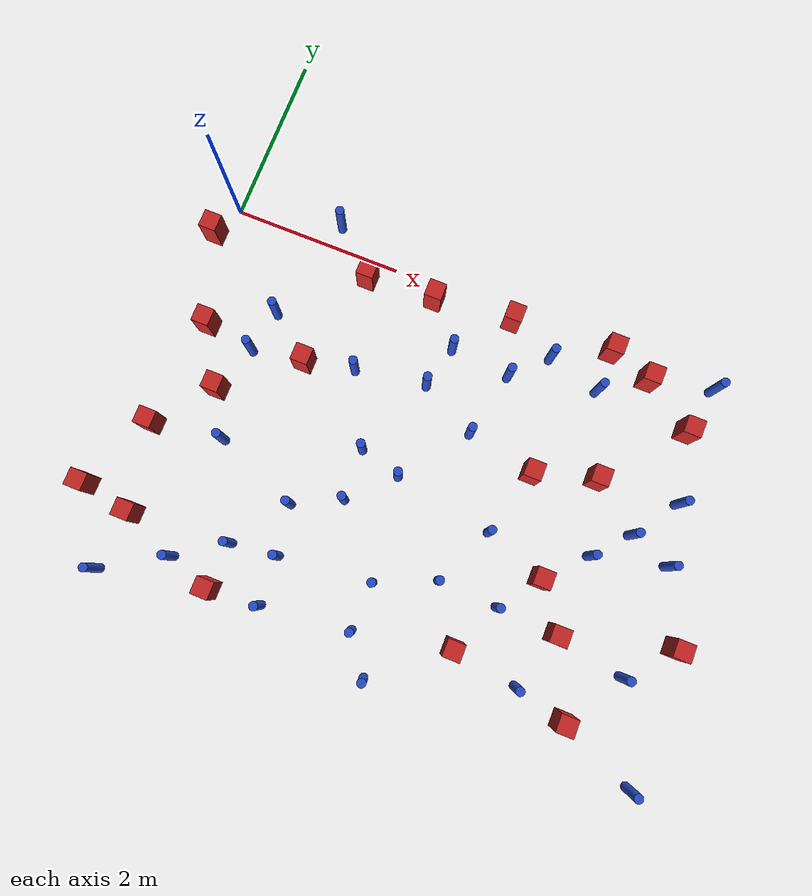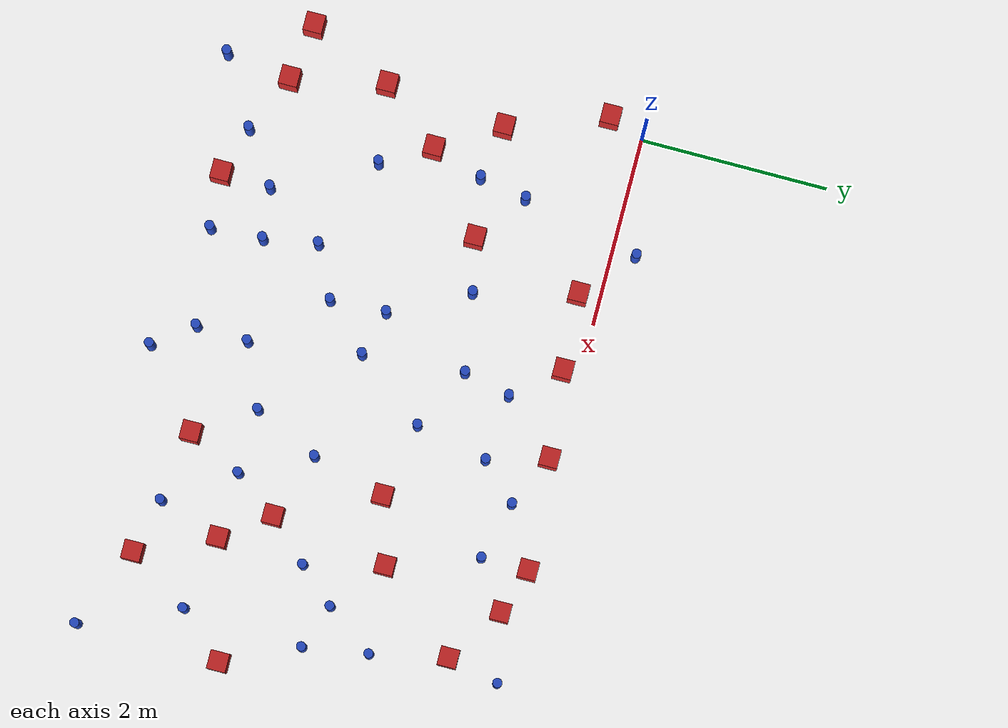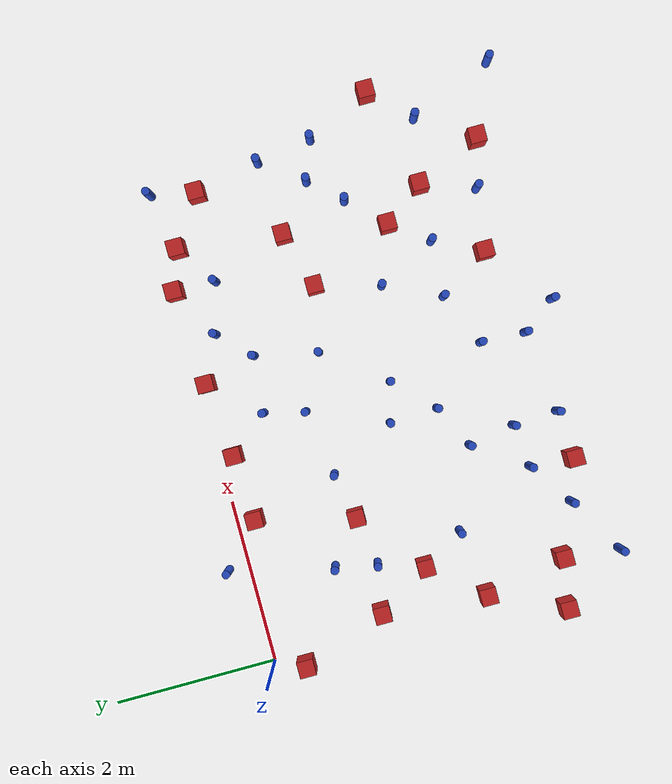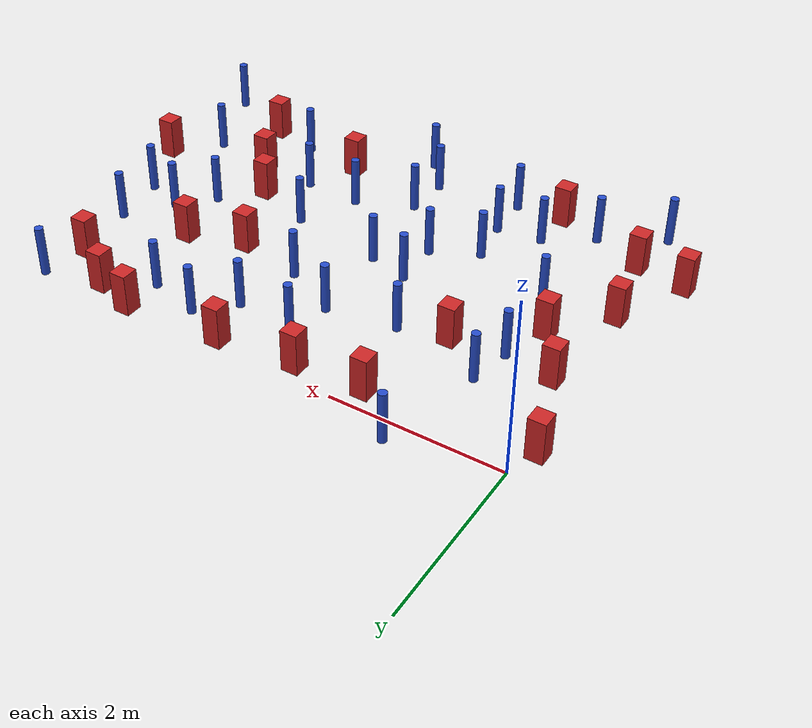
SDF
<sdf version="1.6">
 <model name="dense_16">
  <model name="square_post_obstacle0">
   <static>true</static>
   <pose>-0.131067311828 -0.370867365495 1.91545236811e-07 -7.35059704564e-06 1.12565212e-07 2.39332434364e-05</pose>
   <link name="link">
    <pose>0 0 0.25 0 -0 0</pose>
    <inertial>
     <mass>100</mass>
     <inertia>
      <ixx>0.166667</ixx>
      <ixy>0</ixy>
      <ixz>0</ixz>
      <iyy>0.166667</iyy>
      <iyz>0</iyz>
      <izz>0.166667</izz>
     </inertia>
    </inertial>
    <collision name="collision"><geometry><box><size>.2 .2 .5</size></box></geometry></collision>
    <visual name="visual">
     <geometry><box><size>.2 .2 .5</size></box></geometry>
     <material>
      <script><name>Gazebo/Red</name><uri>file://media/materials/scripts/gazebo.material</uri></script>
     </material>
    </visual>
   </link>
  </model>
  <model name="pole_obstacle0">
   <static>true</static>
   <pose>0.922099915082 -1.01157415732 7.38925637345e-09 -8.47170692799e-08 1.24976765037e-08 -1.74513093019e-07</pose>
   <link name="link">
    <pose>0 0 0.3 0 -0 0</pose>
    <inertial>
     <mass>1</mass>
     <inertia><ixx>0.145833</ixx><ixy>0</ixy><ixz>0</ixz><iyy>0.145833</iyy><iyz>0</iyz><izz>0.125</izz></inertia>
    </inertial>
    <collision name="collision">
     <geometry><cylinder><radius>0.05</radius><length>.6</length></cylinder></geometry>
    </collision>
    <visual name="visual">
     <geometry><cylinder><radius>0.05</radius><length>.6</length></cylinder></geometry>
     <material>
      <script><name>Gazebo/Blue</name><uri>file://media/materials/scripts/gazebo.material</uri></script>
     </material>
    </visual>
   </link>
  </model>
  <model name="pole_obstacle3">
   <static>true</static>
   <pose>4.90822632352 -3.87171259141 7.38925637345e-09 -8.47170692798e-08 1.24976764937e-08 -1.74513093023e-07</pose>
   <link name="link">
    <pose>0 0 0.3 0 -0 0</pose>
    <inertial>
     <mass>1</mass>
     <inertia><ixx>0.145833</ixx><ixy>0</ixy><ixz>0</ixz><iyy>0.145833</iyy><iyz>0</iyz><izz>0.125</izz></inertia>
    </inertial>
    <collision name="collision">
     <geometry><cylinder><radius>0.05</radius><length>.6</length></cylinder></geometry>
    </collision>
    <visual name="visual">
     <geometry><cylinder><radius>0.05</radius><length>.6</length></cylinder></geometry>
     <material>
      <script><name>Gazebo/Blue</name><uri>file://media/materials/scripts/gazebo.material</uri></script>
     </material>
    </visual>
   </link>
  </model>
  <model name="square_post_obstacle11">
   <static>true</static>
   <pose>4.64751890124 -0.0145843861051 1.91545236811e-07 -7.35059704564e-06 1.12565212e-07 2.39332434364e-05</pose>
   <link name="link">
    <pose>0 0 0.25 0 -0 0</pose>
    <inertial>
     <mass>100</mass>
     <inertia>
      <ixx>0.166667</ixx>
      <ixy>0</ixy>
      <ixz>0</ixz>
      <iyy>0.166667</iyy>
      <iyz>0</iyz>
      <izz>0.166667</izz>
     </inertia>
    </inertial>
    <collision name="collision"><geometry><box><size>.2 .2 .5</size></box></geometry></collision>
    <visual name="visual">
     <geometry><box><size>.2 .2 .5</size></box></geometry>
     <material>
      <script><name>Gazebo/Red</name><uri>file://media/materials/scripts/gazebo.material</uri></script>
     </material>
    </visual>
   </link>
  </model>
  <model name="pole_obstacle8">
   <static>true</static>
   <pose>5.52795941858 -1.89979225202 7.38925637345e-09 -8.471706928e-08 1.24976765134e-08 -1.74513093015e-07</pose>
   <link name="link">
    <pose>0 0 0.3 0 -0 0</pose>
    <inertial>
     <mass>1</mass>
     <inertia><ixx>0.145833</ixx><ixy>0</ixy><ixz>0</ixz><iyy>0.145833</iyy><iyz>0</iyz><izz>0.125</izz></inertia>
    </inertial>
    <collision name="collision">
     <geometry><cylinder><radius>0.05</radius><length>.6</length></cylinder></geometry>
    </collision>
    <visual name="visual">
     <geometry><cylinder><radius>0.05</radius><length>.6</length></cylinder></geometry>
     <material>
      <script><name>Gazebo/Blue</name><uri>file://media/materials/scripts/gazebo.material</uri></script>
     </material>
    </visual>
   </link>
  </model>
  <model name="square_post_obstacle24">
   <static>true</static>
   <pose>2.54639958451 -0.183967553714 1.91545236811e-07 -7.35059704564e-06 1.12565212e-07 2.39332434364e-05</pose>
   <link name="link">
    <pose>0 0 0.25 0 -0 0</pose>
    <inertial>
     <mass>100</mass>
     <inertia>
      <ixx>0.166667</ixx>
      <ixy>0</ixy>
      <ixz>0</ixz>
      <iyy>0.166667</iyy>
      <iyz>0</iyz>
      <izz>0.166667</izz>
     </inertia>
    </inertial>
    <collision name="collision"><geometry><box><size>.2 .2 .5</size></box></geometry></collision>
    <visual name="visual">
     <geometry><box><size>.2 .2 .5</size></box></geometry>
     <material>
      <script><name>Gazebo/Red</name><uri>file://media/materials/scripts/gazebo.material</uri></script>
     </material>
    </visual>
   </link>
  </model>
  <model name="square_post_obstacle27">
   <static>true</static>
   <pose>0.645448570369 -2.06766845561 1.91545236811e-07 -7.35059704564e-06 1.12565212e-07 2.39332434364e-05</pose>
   <link name="link">
    <pose>0 0 0.25 0 -0 0</pose>
    <inertial>
     <mass>100</mass>
     <inertia>
      <ixx>0.166667</ixx>
      <ixy>0</ixy>
      <ixz>0</ixz>
      <iyy>0.166667</iyy>
      <iyz>0</iyz>
      <izz>0.166667</izz>
     </inertia>
    </inertial>
    <collision name="collision"><geometry><box><size>.2 .2 .5</size></box></geometry></collision>
    <visual name="visual">
     <geometry><box><size>.2 .2 .5</size></box></geometry>
     <material>
      <script><name>Gazebo/Red</name><uri>file://media/materials/scripts/gazebo.material</uri></script>
     </material>
    </visual>
   </link>
  </model>
  <model name="pole_obstacle39">
   <static>true</static>
   <pose>0.941948804567 -3.97570511167 7.38925637345e-09 -8.471706928e-08 1.2497676523e-08 -1.7451309301e-07</pose>
   <link name="link">
    <pose>0 0 0.3 0 -0 0</pose>
    <inertial>
     <mass>1</mass>
     <inertia><ixx>0.145833</ixx><ixy>0</ixy><ixz>0</ixz><iyy>0.145833</iyy><iyz>0</iyz><izz>0.125</izz></inertia>
    </inertial>
    <collision name="collision">
     <geometry><cylinder><radius>0.05</radius><length>.6</length></cylinder></geometry>
    </collision>
    <visual name="visual">
     <geometry><cylinder><radius>0.05</radius><length>.6</length></cylinder></geometry>
     <material>
      <script><name>Gazebo/Blue</name><uri>file://media/materials/scripts/gazebo.material</uri></script>
     </material>
    </visual>
   </link>
  </model>
  <model name="pole_obstacle42">
   <static>true</static>
   <pose>2.45680966726 -2.70772601505 7.38925637345e-09 -8.47170692798e-08 1.24976764939e-08 -1.74513093025e-07</pose>
   <link name="link">
    <pose>0 0 0.3 0 -0 0</pose>
    <inertial>
     <mass>1</mass>
     <inertia><ixx>0.145833</ixx><ixy>0</ixy><ixz>0</ixz><iyy>0.145833</iyy><iyz>0</iyz><izz>0.125</izz></inertia>
    </inertial>
    <collision name="collision">
     <geometry><cylinder><radius>0.05</radius><length>.6</length></cylinder></geometry>
    </collision>
    <visual name="visual">
     <geometry><cylinder><radius>0.05</radius><length>.6</length></cylinder></geometry>
     <material>
      <script><name>Gazebo/Blue</name><uri>file://media/materials/scripts/gazebo.material</uri></script>
     </material>
    </visual>
   </link>
  </model>
  <model name="square_post_obstacle40">
   <static>true</static>
   <pose>4.27733554913 -1.66524233601 1.91545236811e-07 -7.35059704564e-06 1.12565212e-07 2.39332434364e-05</pose>
   <link name="link">
    <pose>0 0 0.25 0 -0 0</pose>
    <inertial>
     <mass>100</mass>
     <inertia>
      <ixx>0.166667</ixx>
      <ixy>0</ixy>
      <ixz>0</ixz>
      <iyy>0.166667</iyy>
      <iyz>0</iyz>
      <izz>0.166667</izz>
     </inertia>
    </inertial>
    <collision name="collision"><geometry><box><size>.2 .2 .5</size></box></geometry></collision>
    <visual name="visual">
     <geometry><box><size>.2 .2 .5</size></box></geometry>
     <material>
      <script><name>Gazebo/Red</name><uri>file://media/materials/scripts/gazebo.material</uri></script>
     </material>
    </visual>
   </link>
  </model>
  <model name="square_post_obstacle45">
   <static>true</static>
   <pose>4.14560555239 -3.75059449753 1.91545236811e-07 -7.35059704564e-06 1.12565212e-07 2.39332434364e-05</pose>
   <link name="link">
    <pose>0 0 0.25 0 -0 0</pose>
    <inertial>
     <mass>100</mass>
     <inertia>
      <ixx>0.166667</ixx>
      <ixy>0</ixy>
      <ixz>0</ixz>
      <iyy>0.166667</iyy>
      <iyz>0</iyz>
      <izz>0.166667</izz>
     </inertia>
    </inertial>
    <collision name="collision"><geometry><box><size>.2 .2 .5</size></box></geometry></collision>
    <visual name="visual">
     <geometry><box><size>.2 .2 .5</size></box></geometry>
     <material>
      <script><name>Gazebo/Red</name><uri>file://media/materials/scripts/gazebo.material</uri></script>
     </material>
    </visual>
   </link>
  </model>
  <model name="pole_obstacle68">
   <static>true</static>
   <pose>5.928359118 -3.35960280752 7.38925637345e-09 -8.47170692798e-08 1.24976764937e-08 -1.74513093023e-07</pose>
   <link name="link">
    <pose>0 0 0.3 0 -0 0</pose>
    <inertial>
     <mass>1</mass>
     <inertia><ixx>0.145833</ixx><ixy>0</ixy><ixz>0</ixz><iyy>0.145833</iyy><iyz>0</iyz><izz>0.125</izz></inertia>
    </inertial>
    <collision name="collision">
     <geometry><cylinder><radius>0.05</radius><length>.6</length></cylinder></geometry>
    </collision>
    <visual name="visual">
     <geometry><cylinder><radius>0.05</radius><length>.6</length></cylinder></geometry>
     <material>
      <script><name>Gazebo/Blue</name><uri>file://media/materials/scripts/gazebo.material</uri></script>
     </material>
    </visual>
   </link>
  </model>
  <model name="pole_obstacle74">
   <static>true</static>
   <pose>5.18159181039 -2.28237882683 7.38925637345e-09 -8.47170692798e-08 1.24976764937e-08 -1.74513093023e-07</pose>
   <link name="link">
    <pose>0 0 0.3 0 -0 0</pose>
    <inertial>
     <mass>1</mass>
     <inertia><ixx>0.145833</ixx><ixy>0</ixy><ixz>0</ixz><iyy>0.145833</iyy><iyz>0</iyz><izz>0.125</izz></inertia>
    </inertial>
    <collision name="collision">
     <geometry><cylinder><radius>0.05</radius><length>.6</length></cylinder></geometry>
    </collision>
    <visual name="visual">
     <geometry><cylinder><radius>0.05</radius><length>.6</length></cylinder></geometry>
     <material>
      <script><name>Gazebo/Blue</name><uri>file://media/materials/scripts/gazebo.material</uri></script>
     </material>
    </visual>
   </link>
  </model>
  <model name="pole_obstacle75">
   <static>true</static>
   <pose>0.233361145274 -4.39597385954 7.38925637345e-09 -8.471706928e-08 1.24976765124e-08 -1.74513093014e-07</pose>
   <link name="link">
    <pose>0 0 0.3 0 -0 0</pose>
    <inertial>
     <mass>1</mass>
     <inertia><ixx>0.145833</ixx><ixy>0</ixy><ixz>0</ixz><iyy>0.145833</iyy><iyz>0</iyz><izz>0.125</izz></inertia>
    </inertial>
    <collision name="collision">
     <geometry><cylinder><radius>0.05</radius><length>.6</length></cylinder></geometry>
    </collision>
    <visual name="visual">
     <geometry><cylinder><radius>0.05</radius><length>.6</length></cylinder></geometry>
     <material>
      <script><name>Gazebo/Blue</name><uri>file://media/materials/scripts/gazebo.material</uri></script>
     </material>
    </visual>
   </link>
  </model>
  <model name="pole_obstacle91">
   <static>true</static>
   <pose>3.08897060125 -3.4264201279 7.38925637345e-09 -8.47170692798e-08 1.24976764939e-08 -1.74513093025e-07</pose>
   <link name="link">
    <pose>0 0 0.3 0 -0 0</pose>
    <inertial>
     <mass>1</mass>
     <inertia><ixx>0.145833</ixx><ixy>0</ixy><ixz>0</ixz><iyy>0.145833</iyy><iyz>0</iyz><izz>0.125</izz></inertia>
    </inertial>
    <collision name="collision">
     <geometry><cylinder><radius>0.05</radius><length>.6</length></cylinder></geometry>
    </collision>
    <visual name="visual">
     <geometry><cylinder><radius>0.05</radius><length>.6</length></cylinder></geometry>
     <material>
      <script><name>Gazebo/Blue</name><uri>file://media/materials/scripts/gazebo.material</uri></script>
     </material>
    </visual>
   </link>
  </model>
  <model name="pole_obstacle93">
   <static>true</static>
   <pose>0.945299777563 -2.58377284101 7.38925637345e-09 -8.47170692799e-08 1.2497676509e-08 -1.74513093016e-07</pose>
   <link name="link">
    <pose>0 0 0.3 0 -0 0</pose>
    <inertial>
     <mass>1</mass>
     <inertia><ixx>0.145833</ixx><ixy>0</ixy><ixz>0</ixz><iyy>0.145833</iyy><iyz>0</iyz><izz>0.125</izz></inertia>
    </inertial>
    <collision name="collision">
     <geometry><cylinder><radius>0.05</radius><length>.6</length></cylinder></geometry>
    </collision>
    <visual name="visual">
     <geometry><cylinder><radius>0.05</radius><length>.6</length></cylinder></geometry>
     <material>
      <script><name>Gazebo/Blue</name><uri>file://media/materials/scripts/gazebo.material</uri></script>
     </material>
    </visual>
   </link>
  </model>
  <model name="pole_obstacle94">
   <static>true</static>
   <pose>4.02632593985 -0.349782025373 7.38925637345e-09 -8.47170692792e-08 1.24976764416e-08 -1.74513093042e-07</pose>
   <link name="link">
    <pose>0 0 0.3 0 -0 0</pose>
    <inertial>
     <mass>1</mass>
     <inertia><ixx>0.145833</ixx><ixy>0</ixy><ixz>0</ixz><iyy>0.145833</iyy><iyz>0</iyz><izz>0.125</izz></inertia>
    </inertial>
    <collision name="collision">
     <geometry><cylinder><radius>0.05</radius><length>.6</length></cylinder></geometry>
    </collision>
    <visual name="visual">
     <geometry><cylinder><radius>0.05</radius><length>.6</length></cylinder></geometry>
     <material>
      <script><name>Gazebo/Blue</name><uri>file://media/materials/scripts/gazebo.material</uri></script>
     </material>
    </visual>
   </link>
  </model>
  <model name="square_post_obstacle87">
   <static>true</static>
   <pose>6.36985261778 -2.86816911384 1.91545236811e-07 -7.35059704564e-06 1.12565212e-07 2.39332434364e-05</pose>
   <link name="link">
    <pose>0 0 0.25 0 -0 0</pose>
    <inertial>
     <mass>100</mass>
     <inertia>
      <ixx>0.166667</ixx>
      <ixy>0</ixy>
      <ixz>0</ixz>
      <iyy>0.166667</iyy>
      <iyz>0</iyz>
      <izz>0.166667</izz>
     </inertia>
    </inertial>
    <collision name="collision"><geometry><box><size>.2 .2 .5</size></box></geometry></collision>
    <visual name="visual">
     <geometry><box><size>.2 .2 .5</size></box></geometry>
     <material>
      <script><name>Gazebo/Red</name><uri>file://media/materials/scripts/gazebo.material</uri></script>
     </material>
    </visual>
   </link>
  </model>
  <model name="pole_obstacle104">
   <static>true</static>
   <pose>1.9210064453 -2.97251089332 7.38925637345e-09 -8.47170692799e-08 1.24976765053e-08 -1.74513093017e-07</pose>
   <link name="link">
    <pose>0 0 0.3 0 -0 0</pose>
    <inertial>
     <mass>1</mass>
     <inertia><ixx>0.145833</ixx><ixy>0</ixy><ixz>0</ixz><iyy>0.145833</iyy><iyz>0</iyz><izz>0.125</izz></inertia>
    </inertial>
    <collision name="collision">
     <geometry><cylinder><radius>0.05</radius><length>.6</length></cylinder></geometry>
    </collision>
    <visual name="visual">
     <geometry><cylinder><radius>0.05</radius><length>.6</length></cylinder></geometry>
     <material>
      <script><name>Gazebo/Blue</name><uri>file://media/materials/scripts/gazebo.material</uri></script>
     </material>
    </visual>
   </link>
  </model>
  <model name="pole_obstacle108">
   <static>true</static>
   <pose>6.00695831589 -2.0761797639 7.38925637345e-09 -8.47170692798e-08 1.24976764937e-08 -1.74513093023e-07</pose>
   <link name="link">
    <pose>0 0 0.3 0 -0 0</pose>
    <inertial>
     <mass>1</mass>
     <inertia><ixx>0.145833</ixx><ixy>0</ixy><ixz>0</ixz><iyy>0.145833</iyy><iyz>0</iyz><izz>0.125</izz></inertia>
    </inertial>
    <collision name="collision">
     <geometry><cylinder><radius>0.05</radius><length>.6</length></cylinder></geometry>
    </collision>
    <visual name="visual">
     <geometry><cylinder><radius>0.05</radius><length>.6</length></cylinder></geometry>
     <material>
      <script><name>Gazebo/Blue</name><uri>file://media/materials/scripts/gazebo.material</uri></script>
     </material>
    </visual>
   </link>
  </model>
  <model name="square_post_obstacle99">
   <static>true</static>
   <pose>0.123946242135 -2.70105854656 1.91545236811e-07 -7.35059704564e-06 1.12565212e-07 2.39332434364e-05</pose>
   <link name="link">
    <pose>0 0 0.25 0 -0 0</pose>
    <inertial>
     <mass>100</mass>
     <inertia>
      <ixx>0.166667</ixx>
      <ixy>0</ixy>
      <ixz>0</ixz>
      <iyy>0.166667</iyy>
      <iyz>0</iyz>
      <izz>0.166667</izz>
     </inertia>
    </inertial>
    <collision name="collision"><geometry><box><size>.2 .2 .5</size></box></geometry></collision>
    <visual name="visual">
     <geometry><box><size>.2 .2 .5</size></box></geometry>
     <material>
      <script><name>Gazebo/Red</name><uri>file://media/materials/scripts/gazebo.material</uri></script>
     </material>
    </visual>
   </link>
  </model>
  <model name="square_post_obstacle101">
   <static>true</static>
   <pose>5.49275221703 -4.01679119291 1.91545236811e-07 -7.35059704564e-06 1.12565212e-07 2.39332434364e-05</pose>
   <link name="link">
    <pose>0 0 0.25 0 -0 0</pose>
    <inertial>
     <mass>100</mass>
     <inertia>
      <ixx>0.166667</ixx>
      <ixy>0</ixy>
      <ixz>0</ixz>
      <iyy>0.166667</iyy>
      <iyz>0</iyz>
      <izz>0.166667</izz>
     </inertia>
    </inertial>
    <collision name="collision"><geometry><box><size>.2 .2 .5</size></box></geometry></collision>
    <visual name="visual">
     <geometry><box><size>.2 .2 .5</size></box></geometry>
     <material>
      <script><name>Gazebo/Red</name><uri>file://media/materials/scripts/gazebo.material</uri></script>
     </material>
    </visual>
   </link>
  </model>
  <model name="pole_obstacle114">
   <static>true</static>
   <pose>2.95199514795 -0.662609357601 7.38925637345e-09 -8.471706928e-08 1.24976765177e-08 -1.74513093012e-07</pose>
   <link name="link">
    <pose>0 0 0.3 0 -0 0</pose>
    <inertial>
     <mass>1</mass>
     <inertia><ixx>0.145833</ixx><ixy>0</ixy><ixz>0</ixz><iyy>0.145833</iyy><iyz>0</iyz><izz>0.125</izz></inertia>
    </inertial>
    <collision name="collision">
     <geometry><cylinder><radius>0.05</radius><length>.6</length></cylinder></geometry>
    </collision>
    <visual name="visual">
     <geometry><cylinder><radius>0.05</radius><length>.6</length></cylinder></geometry>
     <material>
      <script><name>Gazebo/Blue</name><uri>file://media/materials/scripts/gazebo.material</uri></script>
     </material>
    </visual>
   </link>
  </model>
  <model name="square_post_obstacle104">
   <static>true</static>
   <pose>4.97347921836 -1.45697879544 1.91545236811e-07 -7.35059704564e-06 1.12565212e-07 2.39332434364e-05</pose>
   <link name="link">
    <pose>0 0 0.25 0 -0 0</pose>
    <inertial>
     <mass>100</mass>
     <inertia>
      <ixx>0.166667</ixx>
      <ixy>0</ixy>
      <ixz>0</ixz>
      <iyy>0.166667</iyy>
      <iyz>0</iyz>
      <izz>0.166667</izz>
     </inertia>
    </inertial>
    <collision name="collision"><geometry><box><size>.2 .2 .5</size></box></geometry></collision>
    <visual name="visual">
     <geometry><box><size>.2 .2 .5</size></box></geometry>
     <material>
      <script><name>Gazebo/Red</name><uri>file://media/materials/scripts/gazebo.material</uri></script>
     </material>
    </visual>
   </link>
  </model>
  <model name="square_post_obstacle106">
   <static>true</static>
   <pose>5.13841010977 -0.178420614641 1.91545236811e-07 -7.35059704564e-06 1.12565212e-07 2.39332434364e-05</pose>
   <link name="link">
    <pose>0 0 0.25 0 -0 0</pose>
    <inertial>
     <mass>100</mass>
     <inertia>
      <ixx>0.166667</ixx>
      <ixy>0</ixy>
      <ixz>0</ixz>
      <iyy>0.166667</iyy>
      <iyz>0</iyz>
      <izz>0.166667</izz>
     </inertia>
    </inertial>
    <collision name="collision"><geometry><box><size>.2 .2 .5</size></box></geometry></collision>
    <visual name="visual">
     <geometry><box><size>.2 .2 .5</size></box></geometry>
     <material>
      <script><name>Gazebo/Red</name><uri>file://media/materials/scripts/gazebo.material</uri></script>
     </material>
    </visual>
   </link>
  </model>
  <model name="square_post_obstacle108">
   <static>true</static>
   <pose>0.323722808459 -3.6996743075 1.91545236811e-07 -7.35059704564e-06 1.12565212e-07 2.39332434364e-05</pose>
   <link name="link">
    <pose>0 0 0.25 0 -0 0</pose>
    <inertial>
     <mass>100</mass>
     <inertia>
      <ixx>0.166667</ixx>
      <ixy>0</ixy>
      <ixz>0</ixz>
      <iyy>0.166667</iyy>
      <iyz>0</iyz>
      <izz>0.166667</izz>
     </inertia>
    </inertial>
    <collision name="collision"><geometry><box><size>.2 .2 .5</size></box></geometry></collision>
    <visual name="visual">
     <geometry><box><size>.2 .2 .5</size></box></geometry>
     <material>
      <script><name>Gazebo/Red</name><uri>file://media/materials/scripts/gazebo.material</uri></script>
     </material>
    </visual>
   </link>
  </model>
  <model name="pole_obstacle124">
   <static>true</static>
   <pose>4.43274681626 -3.17035054952 7.38925637345e-09 -8.47170692798e-08 1.24976764937e-08 -1.74513093023e-07</pose>
   <link name="link">
    <pose>0 0 0.3 0 -0 0</pose>
    <inertial>
     <mass>1</mass>
     <inertia><ixx>0.145833</ixx><ixy>0</ixy><ixz>0</ixz><iyy>0.145833</iyy><iyz>0</iyz><izz>0.125</izz></inertia>
    </inertial>
    <collision name="collision">
     <geometry><cylinder><radius>0.05</radius><length>.6</length></cylinder></geometry>
    </collision>
    <visual name="visual">
     <geometry><cylinder><radius>0.05</radius><length>.6</length></cylinder></geometry>
     <material>
      <script><name>Gazebo/Blue</name><uri>file://media/materials/scripts/gazebo.material</uri></script>
     </material>
    </visual>
   </link>
  </model>
  <model name="pole_obstacle125">
   <static>true</static>
   <pose>4.64521914244 -0.515159359949 7.38925637345e-09 -8.47170692798e-08 1.24976765005e-08 -1.74513093021e-07</pose>
   <link name="link">
    <pose>0 0 0.3 0 -0 0</pose>
    <inertial>
     <mass>1</mass>
     <inertia><ixx>0.145833</ixx><ixy>0</ixy><ixz>0</ixz><iyy>0.145833</iyy><iyz>0</iyz><izz>0.125</izz></inertia>
    </inertial>
    <collision name="collision">
     <geometry><cylinder><radius>0.05</radius><length>.6</length></cylinder></geometry>
    </collision>
    <visual name="visual">
     <geometry><cylinder><radius>0.05</radius><length>.6</length></cylinder></geometry>
     <material>
      <script><name>Gazebo/Blue</name><uri>file://media/materials/scripts/gazebo.material</uri></script>
     </material>
    </visual>
   </link>
  </model>
  <model name="pole_obstacle132">
   <static>true</static>
   <pose>3.37410075446 -4.39498521521 7.38925637345e-09 -8.47170692798e-08 1.24976765033e-08 -1.74513093019e-07</pose>
   <link name="link">
    <pose>0 0 0.3 0 -0 0</pose>
    <inertial>
     <mass>1</mass>
     <inertia><ixx>0.145833</ixx><ixy>0</ixy><ixz>0</ixz><iyy>0.145833</iyy><iyz>0</iyz><izz>0.125</izz></inertia>
    </inertial>
    <collision name="collision">
     <geometry><cylinder><radius>0.05</radius><length>.6</length></cylinder></geometry>
    </collision>
    <visual name="visual">
     <geometry><cylinder><radius>0.05</radius><length>.6</length></cylinder></geometry>
     <material>
      <script><name>Gazebo/Blue</name><uri>file://media/materials/scripts/gazebo.material</uri></script>
     </material>
    </visual>
   </link>
  </model>
  <model name="pole_obstacle134">
   <static>true</static>
   <pose>1.21408672252 0.24726376938 7.38925637345e-09 -8.47170692799e-08 1.24976765057e-08 -1.74513093016e-07</pose>
   <link name="link">
    <pose>0 0 0.3 0 -0 0</pose>
    <inertial>
     <mass>1</mass>
     <inertia><ixx>0.145833</ixx><ixy>0</ixy><ixz>0</ixz><iyy>0.145833</iyy><iyz>0</iyz><izz>0.125</izz></inertia>
    </inertial>
    <collision name="collision">
     <geometry><cylinder><radius>0.05</radius><length>.6</length></cylinder></geometry>
    </collision>
    <visual name="visual">
     <geometry><cylinder><radius>0.05</radius><length>.6</length></cylinder></geometry>
     <material>
      <script><name>Gazebo/Blue</name><uri>file://media/materials/scripts/gazebo.material</uri></script>
     </material>
    </visual>
   </link>
  </model>
  <model name="square_post_obstacle116">
   <static>true</static>
   <pose>3.46991024344 -0.0904244772992 1.91545236811e-07 -7.35059704564e-06 1.12565212e-07 2.39332434364e-05</pose>
   <link name="link">
    <pose>0 0 0.25 0 -0 0</pose>
    <inertial>
     <mass>100</mass>
     <inertia>
      <ixx>0.166667</ixx>
      <ixy>0</ixy>
      <ixz>0</ixz>
      <iyy>0.166667</iyy>
      <iyz>0</iyz>
      <izz>0.166667</izz>
     </inertia>
    </inertial>
    <collision name="collision"><geometry><box><size>.2 .2 .5</size></box></geometry></collision>
    <visual name="visual">
     <geometry><box><size>.2 .2 .5</size></box></geometry>
     <material>
      <script><name>Gazebo/Red</name><uri>file://media/materials/scripts/gazebo.material</uri></script>
     </material>
    </visual>
   </link>
  </model>
  <model name="square_post_obstacle124">
   <static>true</static>
   <pose>1.45263293414 -4.13727900936 1.91545236811e-07 -7.35059704564e-06 1.12565212e-07 2.39332434364e-05</pose>
   <link name="link">
    <pose>0 0 0.25 0 -0 0</pose>
    <inertial>
     <mass>100</mass>
     <inertia>
      <ixx>0.166667</ixx>
      <ixy>0</ixy>
      <ixz>0</ixz>
      <iyy>0.166667</iyy>
      <iyz>0</iyz>
      <izz>0.166667</izz>
     </inertia>
    </inertial>
    <collision name="collision"><geometry><box><size>.2 .2 .5</size></box></geometry></collision>
    <visual name="visual">
     <geometry><box><size>.2 .2 .5</size></box></geometry>
     <material>
      <script><name>Gazebo/Red</name><uri>file://media/materials/scripts/gazebo.material</uri></script>
     </material>
    </visual>
   </link>
  </model>
  <model name="pole_obstacle141">
   <static>true</static>
   <pose>4.06763421903 -2.45037013403 7.38925637345e-09 -8.47170692798e-08 1.24976764937e-08 -1.74513093023e-07</pose>
   <link name="link">
    <pose>0 0 0.3 0 -0 0</pose>
    <inertial>
     <mass>1</mass>
     <inertia><ixx>0.145833</ixx><ixy>0</ixy><ixz>0</ixz><iyy>0.145833</iyy><iyz>0</iyz><izz>0.125</izz></inertia>
    </inertial>
    <collision name="collision">
     <geometry><cylinder><radius>0.05</radius><length>.6</length></cylinder></geometry>
    </collision>
    <visual name="visual">
     <geometry><cylinder><radius>0.05</radius><length>.6</length></cylinder></geometry>
     <material>
      <script><name>Gazebo/Blue</name><uri>file://media/materials/scripts/gazebo.material</uri></script>
     </material>
    </visual>
   </link>
  </model>
  <model name="square_post_obstacle130">
   <static>true</static>
   <pose>-0.278341029281 -3.59370910486 1.91545236811e-07 -7.35059704564e-06 1.12565212e-07 2.39332434364e-05</pose>
   <link name="link">
    <pose>0 0 0.25 0 -0 0</pose>
    <inertial>
     <mass>100</mass>
     <inertia>
      <ixx>0.166667</ixx>
      <ixy>0</ixy>
      <ixz>0</ixz>
      <iyy>0.166667</iyy>
      <iyz>0</iyz>
      <izz>0.166667</izz>
     </inertia>
    </inertial>
    <collision name="collision"><geometry><box><size>.2 .2 .5</size></box></geometry></collision>
    <visual name="visual">
     <geometry><box><size>.2 .2 .5</size></box></geometry>
     <material>
      <script><name>Gazebo/Red</name><uri>file://media/materials/scripts/gazebo.material</uri></script>
     </material>
    </visual>
   </link>
  </model>
  <model name="pole_obstacle144">
   <static>true</static>
   <pose>3.48645597654 -1.50092338647 7.38925637345e-09 -8.471706928e-08 1.24976765152e-08 -1.74513093012e-07</pose>
   <link name="link">
    <pose>0 0 0.3 0 -0 0</pose>
    <inertial>
     <mass>1</mass>
     <inertia><ixx>0.145833</ixx><ixy>0</ixy><ixz>0</ixz><iyy>0.145833</iyy><iyz>0</iyz><izz>0.125</izz></inertia>
    </inertial>
    <collision name="collision">
     <geometry><cylinder><radius>0.05</radius><length>.6</length></cylinder></geometry>
    </collision>
    <visual name="visual">
     <geometry><cylinder><radius>0.05</radius><length>.6</length></cylinder></geometry>
     <material>
      <script><name>Gazebo/Blue</name><uri>file://media/materials/scripts/gazebo.material</uri></script>
     </material>
    </visual>
   </link>
  </model>
  <model name="pole_obstacle148">
   <static>true</static>
   <pose>2.00894984294 -1.29638117159 7.38925637345e-09 -8.471706928e-08 1.24976765091e-08 -1.74513093016e-07</pose>
   <link name="link">
    <pose>0 0 0.3 0 -0 0</pose>
    <inertial>
     <mass>1</mass>
     <inertia><ixx>0.145833</ixx><ixy>0</ixy><ixz>0</ixz><iyy>0.145833</iyy><iyz>0</iyz><izz>0.125</izz></inertia>
    </inertial>
    <collision name="collision">
     <geometry><cylinder><radius>0.05</radius><length>.6</length></cylinder></geometry>
    </collision>
    <visual name="visual">
     <geometry><cylinder><radius>0.05</radius><length>.6</length></cylinder></geometry>
     <material>
      <script><name>Gazebo/Blue</name><uri>file://media/materials/scripts/gazebo.material</uri></script>
     </material>
    </visual>
   </link>
  </model>
  <model name="pole_obstacle156">
   <static>true</static>
   <pose>6.36084520379 -4.39524114554 7.38925637345e-09 -8.47170692796e-08 1.24976764786e-08 -1.74513093032e-07</pose>
   <link name="link">
    <pose>0 0 0.3 0 -0 0</pose>
    <inertial>
     <mass>1</mass>
     <inertia><ixx>0.145833</ixx><ixy>0</ixy><ixz>0</ixz><iyy>0.145833</iyy><iyz>0</iyz><izz>0.125</izz></inertia>
    </inertial>
    <collision name="collision">
     <geometry><cylinder><radius>0.05</radius><length>.6</length></cylinder></geometry>
    </collision>
    <visual name="visual">
     <geometry><cylinder><radius>0.05</radius><length>.6</length></cylinder></geometry>
     <material>
      <script><name>Gazebo/Blue</name><uri>file://media/materials/scripts/gazebo.material</uri></script>
     </material>
    </visual>
   </link>
  </model>
  <model name="pole_obstacle161">
   <static>true</static>
   <pose>3.74624879769 -3.14005579431 7.38925637345e-09 -8.47170692798e-08 1.24976764939e-08 -1.74513093025e-07</pose>
   <link name="link">
    <pose>0 0 0.3 0 -0 0</pose>
    <inertial>
     <mass>1</mass>
     <inertia><ixx>0.145833</ixx><ixy>0</ixy><ixz>0</ixz><iyy>0.145833</iyy><iyz>0</iyz><izz>0.125</izz></inertia>
    </inertial>
    <collision name="collision">
     <geometry><cylinder><radius>0.05</radius><length>.6</length></cylinder></geometry>
    </collision>
    <visual name="visual">
     <geometry><cylinder><radius>0.05</radius><length>.6</length></cylinder></geometry>
     <material>
      <script><name>Gazebo/Blue</name><uri>file://media/materials/scripts/gazebo.material</uri></script>
     </material>
    </visual>
   </link>
  </model>
  <model name="pole_obstacle168">
   <static>true</static>
   <pose>3.65381656985 -0.728703131612 7.38925637345e-09 -8.471706928e-08 1.24976765177e-08 -1.74513093012e-07</pose>
   <link name="link">
    <pose>0 0 0.3 0 -0 0</pose>
    <inertial>
     <mass>1</mass>
     <inertia><ixx>0.145833</ixx><ixy>0</ixy><ixz>0</ixz><iyy>0.145833</iyy><iyz>0</iyz><izz>0.125</izz></inertia>
    </inertial>
    <collision name="collision">
     <geometry><cylinder><radius>0.05</radius><length>.6</length></cylinder></geometry>
    </collision>
    <visual name="visual">
     <geometry><cylinder><radius>0.05</radius><length>.6</length></cylinder></geometry>
     <material>
      <script><name>Gazebo/Blue</name><uri>file://media/materials/scripts/gazebo.material</uri></script>
     </material>
    </visual>
   </link>
  </model>
  <model name="pole_obstacle170">
   <static>true</static>
   <pose>2.91710588758 -2.24461382649 7.38925637345e-09 -8.47170692798e-08 1.24976764939e-08 -1.74513093025e-07</pose>
   <link name="link">
    <pose>0 0 0.3 0 -0 0</pose>
    <inertial>
     <mass>1</mass>
     <inertia><ixx>0.145833</ixx><ixy>0</ixy><ixz>0</ixz><iyy>0.145833</iyy><iyz>0</iyz><izz>0.125</izz></inertia>
    </inertial>
    <collision name="collision">
     <geometry><cylinder><radius>0.05</radius><length>.6</length></cylinder></geometry>
    </collision>
    <visual name="visual">
     <geometry><cylinder><radius>0.05</radius><length>.6</length></cylinder></geometry>
     <material>
      <script><name>Gazebo/Blue</name><uri>file://media/materials/scripts/gazebo.material</uri></script>
     </material>
    </visual>
   </link>
  </model>
  <model name="square_post_obstacle161">
   <static>true</static>
   <pose>5.73077555269 -0.581668759927 1.91545236811e-07 -7.35059704564e-06 1.12565212e-07 2.39332434364e-05</pose>
   <link name="link">
    <pose>0 0 0.25 0 -0 0</pose>
    <inertial>
     <mass>100</mass>
     <inertia>
      <ixx>0.166667</ixx>
      <ixy>0</ixy>
      <ixz>0</ixz>
      <iyy>0.166667</iyy>
      <iyz>0</iyz>
      <izz>0.166667</izz>
     </inertia>
    </inertial>
    <collision name="collision"><geometry><box><size>.2 .2 .5</size></box></geometry></collision>
    <visual name="visual">
     <geometry><box><size>.2 .2 .5</size></box></geometry>
     <material>
      <script><name>Gazebo/Red</name><uri>file://media/materials/scripts/gazebo.material</uri></script>
     </material>
    </visual>
   </link>
  </model>
  <model name="pole_obstacle174">
   <static>true</static>
   <pose>5.9019736337 -1.38723684792 7.38925637345e-09 -8.471706928e-08 1.24976765134e-08 -1.74513093015e-07</pose>
   <link name="link">
    <pose>0 0 0.3 0 -0 0</pose>
    <inertial>
     <mass>1</mass>
     <inertia><ixx>0.145833</ixx><ixy>0</ixy><ixz>0</ixz><iyy>0.145833</iyy><iyz>0</iyz><izz>0.125</izz></inertia>
    </inertial>
    <collision name="collision">
     <geometry><cylinder><radius>0.05</radius><length>.6</length></cylinder></geometry>
    </collision>
    <visual name="visual">
     <geometry><cylinder><radius>0.05</radius><length>.6</length></cylinder></geometry>
     <material>
      <script><name>Gazebo/Blue</name><uri>file://media/materials/scripts/gazebo.material</uri></script>
     </material>
    </visual>
   </link>
  </model>
  <model name="pole_obstacle176">
   <static>true</static>
   <pose>2.04278611069 -4.10083202101 7.38925637345e-09 -8.47170692799e-08 1.24976765014e-08 -1.7451309302e-07</pose>
   <link name="link">
    <pose>0 0 0.3 0 -0 0</pose>
    <inertial>
     <mass>1</mass>
     <inertia><ixx>0.145833</ixx><ixy>0</ixy><ixz>0</ixz><iyy>0.145833</iyy><iyz>0</iyz><izz>0.125</izz></inertia>
    </inertial>
    <collision name="collision">
     <geometry><cylinder><radius>0.05</radius><length>.6</length></cylinder></geometry>
    </collision>
    <visual name="visual">
     <geometry><cylinder><radius>0.05</radius><length>.6</length></cylinder></geometry>
     <material>
      <script><name>Gazebo/Blue</name><uri>file://media/materials/scripts/gazebo.material</uri></script>
     </material>
    </visual>
   </link>
  </model>
  <model name="pole_obstacle179">
   <static>true</static>
   <pose>2.01729876926 -3.54404652601 7.38925637345e-09 -8.47170692797e-08 1.24976764891e-08 -1.74513093027e-07</pose>
   <link name="link">
    <pose>0 0 0.3 0 -0 0</pose>
    <inertial>
     <mass>1</mass>
     <inertia><ixx>0.145833</ixx><ixy>0</ixy><ixz>0</ixz><iyy>0.145833</iyy><iyz>0</iyz><izz>0.125</izz></inertia>
    </inertial>
    <collision name="collision">
     <geometry><cylinder><radius>0.05</radius><length>.6</length></cylinder></geometry>
    </collision>
    <visual name="visual">
     <geometry><cylinder><radius>0.05</radius><length>.6</length></cylinder></geometry>
     <material>
      <script><name>Gazebo/Blue</name><uri>file://media/materials/scripts/gazebo.material</uri></script>
     </material>
    </visual>
   </link>
  </model>
  <model name="square_post_obstacle177">
   <static>true</static>
   <pose>1.44084622532 -1.41727818385 1.91545236811e-07 -7.35059704564e-06 1.12565212e-07 2.39332434364e-05</pose>
   <link name="link">
    <pose>0 0 0.25 0 -0 0</pose>
    <inertial>
     <mass>100</mass>
     <inertia>
      <ixx>0.166667</ixx>
      <ixy>0</ixy>
      <ixz>0</ixz>
      <iyy>0.166667</iyy>
      <iyz>0</iyz>
      <izz>0.166667</izz>
     </inertia>
    </inertial>
    <collision name="collision"><geometry><box><size>.2 .2 .5</size></box></geometry></collision>
    <visual name="visual">
     <geometry><box><size>.2 .2 .5</size></box></geometry>
     <material>
      <script><name>Gazebo/Red</name><uri>file://media/materials/scripts/gazebo.material</uri></script>
     </material>
    </visual>
   </link>
  </model>
  <model name="square_post_obstacle184">
   <static>true</static>
   <pose>0.245340782658 -1.41653941483 1.91545236811e-07 -7.35059704564e-06 1.12565212e-07 2.39332434364e-05</pose>
   <link name="link">
    <pose>0 0 0.25 0 -0 0</pose>
    <inertial>
     <mass>100</mass>
     <inertia>
      <ixx>0.166667</ixx>
      <ixy>0</ixy>
      <ixz>0</ixz>
      <iyy>0.166667</iyy>
      <iyz>0</iyz>
      <izz>0.166667</izz>
     </inertia>
    </inertial>
    <collision name="collision"><geometry><box><size>.2 .2 .5</size></box></geometry></collision>
    <visual name="visual">
     <geometry><box><size>.2 .2 .5</size></box></geometry>
     <material>
      <script><name>Gazebo/Red</name><uri>file://media/materials/scripts/gazebo.material</uri></script>
     </material>
    </visual>
   </link>
  </model>
  <model name="pole_obstacle197">
   <static>true</static>
   <pose>1.48094805827 -3.60837556745 7.38925637345e-09 -8.47170692799e-08 1.24976765053e-08 -1.74513093017e-07</pose>
   <link name="link">
    <pose>0 0 0.3 0 -0 0</pose>
    <inertial>
     <mass>1</mass>
     <inertia><ixx>0.145833</ixx><ixy>0</ixy><ixz>0</ixz><iyy>0.145833</iyy><iyz>0</iyz><izz>0.125</izz></inertia>
    </inertial>
    <collision name="collision">
     <geometry><cylinder><radius>0.05</radius><length>.6</length></cylinder></geometry>
    </collision>
    <visual name="visual">
     <geometry><cylinder><radius>0.05</radius><length>.6</length></cylinder></geometry>
     <material>
      <script><name>Gazebo/Blue</name><uri>file://media/materials/scripts/gazebo.material</uri></script>
     </material>
    </visual>
   </link>
  </model>
  <model name="square_post_obstacle190">
   <static>true</static>
   <pose>5.12858224642 -3.20269170492 1.91545236811e-07 -7.35059704564e-06 1.12565212e-07 2.39332434364e-05</pose>
   <link name="link">
    <pose>0 0 0.25 0 -0 0</pose>
    <inertial>
     <mass>100</mass>
     <inertia>
      <ixx>0.166667</ixx>
      <ixy>0</ixy>
      <ixz>0</ixz>
      <iyy>0.166667</iyy>
      <iyz>0</iyz>
      <izz>0.166667</izz>
     </inertia>
    </inertial>
    <collision name="collision"><geometry><box><size>.2 .2 .5</size></box></geometry></collision>
    <visual name="visual">
     <geometry><box><size>.2 .2 .5</size></box></geometry>
     <material>
      <script><name>Gazebo/Red</name><uri>file://media/materials/scripts/gazebo.material</uri></script>
     </material>
    </visual>
   </link>
  </model>
  <model name="square_post_obstacle192">
   <static>true</static>
   <pose>4.76688922472 -2.70876689273 1.91545236811e-07 -7.35059704564e-06 1.12565212e-07 2.39332434364e-05</pose>
   <link name="link">
    <pose>0 0 0.25 0 -0 0</pose>
    <inertial>
     <mass>100</mass>
     <inertia>
      <ixx>0.166667</ixx>
      <ixy>0</ixy>
      <ixz>0</ixz>
      <iyy>0.166667</iyy>
      <iyz>0</iyz>
      <izz>0.166667</izz>
     </inertia>
    </inertial>
    <collision name="collision"><geometry><box><size>.2 .2 .5</size></box></geometry></collision>
    <visual name="visual">
     <geometry><box><size>.2 .2 .5</size></box></geometry>
     <material>
      <script><name>Gazebo/Red</name><uri>file://media/materials/scripts/gazebo.material</uri></script>
     </material>
    </visual>
   </link>
  </model>
  <model name="pole_obstacle201">
   <static>true</static>
   <pose>2.83212177777 -1.16262397717 7.38925637345e-09 -8.471706928e-08 1.24976765152e-08 -1.74513093012e-07</pose>
   <link name="link">
    <pose>0 0 0.3 0 -0 0</pose>
    <inertial>
     <mass>1</mass>
     <inertia><ixx>0.145833</ixx><ixy>0</ixy><ixz>0</ixz><iyy>0.145833</iyy><iyz>0</iyz><izz>0.125</izz></inertia>
    </inertial>
    <collision name="collision">
     <geometry><cylinder><radius>0.05</radius><length>.6</length></cylinder></geometry>
    </collision>
    <visual name="visual">
     <geometry><cylinder><radius>0.05</radius><length>.6</length></cylinder></geometry>
     <material>
      <script><name>Gazebo/Blue</name><uri>file://media/materials/scripts/gazebo.material</uri></script>
     </material>
    </visual>
   </link>
  </model>
  <model name="pole_obstacle205">
   <static>true</static>
   <pose>5.86086660895 -0.0271742772173 7.38925637345e-09 -8.47170692799e-08 1.24976764994e-08 -1.74513093022e-07</pose>
   <link name="link">
    <pose>0 0 0.3 0 -0 0</pose>
    <inertial>
     <mass>1</mass>
     <inertia><ixx>0.145833</ixx><ixy>0</ixy><ixz>0</ixz><iyy>0.145833</iyy><iyz>0</iyz><izz>0.125</izz></inertia>
    </inertial>
    <collision name="collision">
     <geometry><cylinder><radius>0.05</radius><length>.6</length></cylinder></geometry>
    </collision>
    <visual name="visual">
     <geometry><cylinder><radius>0.05</radius><length>.6</length></cylinder></geometry>
     <material>
      <script><name>Gazebo/Blue</name><uri>file://media/materials/scripts/gazebo.material</uri></script>
     </material>
    </visual>
   </link>
  </model>
  <model name="pole_obstacle206">
   <static>true</static>
   <pose>2.43388463403 -2.11242974367 7.38925637345e-09 -8.47170692798e-08 1.24976764939e-08 -1.74513093025e-07</pose>
   <link name="link">
    <pose>0 0 0.3 0 -0 0</pose>
    <inertial>
     <mass>1</mass>
     <inertia><ixx>0.145833</ixx><ixy>0</ixy><ixz>0</ixz><iyy>0.145833</iyy><iyz>0</iyz><izz>0.125</izz></inertia>
    </inertial>
    <collision name="collision">
     <geometry><cylinder><radius>0.05</radius><length>.6</length></cylinder></geometry>
    </collision>
    <visual name="visual">
     <geometry><cylinder><radius>0.05</radius><length>.6</length></cylinder></geometry>
     <material>
      <script><name>Gazebo/Blue</name><uri>file://media/materials/scripts/gazebo.material</uri></script>
     </material>
    </visual>
   </link>
  </model>
  <model name="square_post_obstacle206">
   <static>true</static>
   <pose>1.73821851853 -0.229819109278 1.91545236811e-07 -7.35059704564e-06 1.12565212e-07 2.39332434364e-05</pose>
   <link name="link">
    <pose>0 0 0.25 0 -0 0</pose>
    <inertial>
     <mass>100</mass>
     <inertia>
      <ixx>0.166667</ixx>
      <ixy>0</ixy>
      <ixz>0</ixz>
      <iyy>0.166667</iyy>
      <iyz>0</iyz>
      <izz>0.166667</izz>
     </inertia>
    </inertial>
    <collision name="collision"><geometry><box><size>.2 .2 .5</size></box></geometry></collision>
    <visual name="visual">
     <geometry><box><size>.2 .2 .5</size></box></geometry>
     <material>
      <script><name>Gazebo/Red</name><uri>file://media/materials/scripts/gazebo.material</uri></script>
     </material>
    </visual>
   </link>
  </model>
  <model name="pole_obstacle216">
   <static>true</static>
   <pose>0.82855398103 -1.51813988724 7.38925637345e-09 -8.47170692799e-08 1.24976765033e-08 -1.7451309302e-07</pose>
   <link name="link">
    <pose>0 0 0.3 0 -0 0</pose>
    <inertial>
     <mass>1</mass>
     <inertia><ixx>0.145833</ixx><ixy>0</ixy><ixz>0</ixz><iyy>0.145833</iyy><iyz>0</iyz><izz>0.125</izz></inertia>
    </inertial>
    <collision name="collision">
     <geometry><cylinder><radius>0.05</radius><length>.6</length></cylinder></geometry>
    </collision>
    <visual name="visual">
     <geometry><cylinder><radius>0.05</radius><length>.6</length></cylinder></geometry>
     <material>
      <script><name>Gazebo/Blue</name><uri>file://media/materials/scripts/gazebo.material</uri></script>
     </material>
    </visual>
   </link>
  </model>
  <model name="pole_obstacle221">
   <static>true</static>
   <pose>3.0654557508 -3.9795271409 7.38925637345e-09 -8.47170692797e-08 1.24976764881e-08 -1.74513093029e-07</pose>
   <link name="link">
    <pose>0 0 0.3 0 -0 0</pose>
    <inertial>
     <mass>1</mass>
     <inertia><ixx>0.145833</ixx><ixy>0</ixy><ixz>0</ixz><iyy>0.145833</iyy><iyz>0</iyz><izz>0.125</izz></inertia>
    </inertial>
    <collision name="collision">
     <geometry><cylinder><radius>0.05</radius><length>.6</length></cylinder></geometry>
    </collision>
    <visual name="visual">
     <geometry><cylinder><radius>0.05</radius><length>.6</length></cylinder></geometry>
     <material>
      <script><name>Gazebo/Blue</name><uri>file://media/materials/scripts/gazebo.material</uri></script>
     </material>
    </visual>
   </link>
  </model>
 </model>
</sdf>
